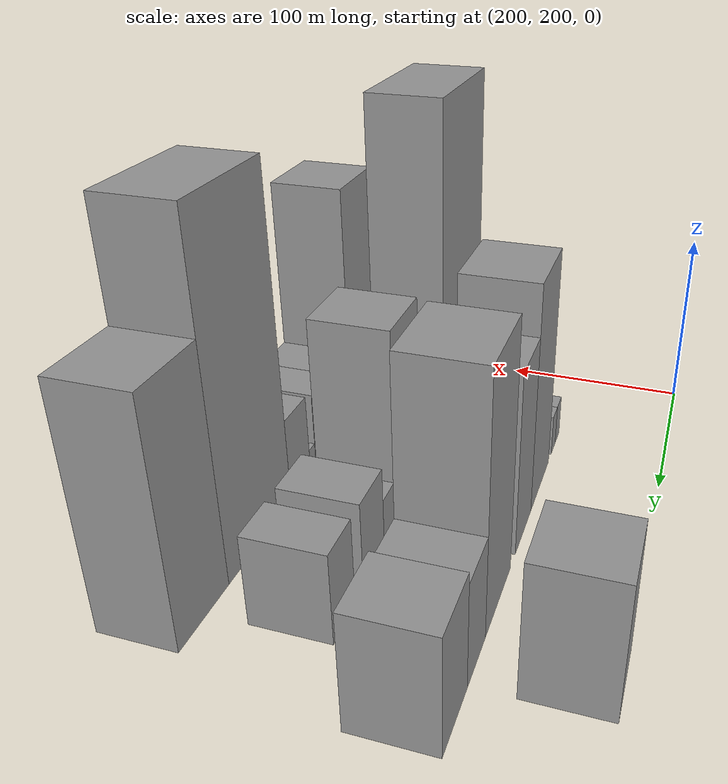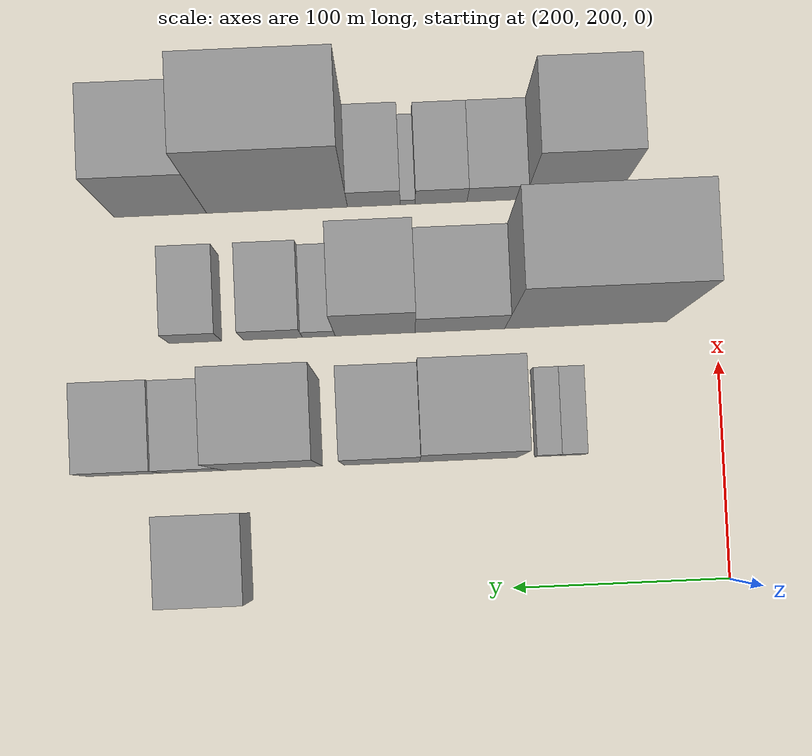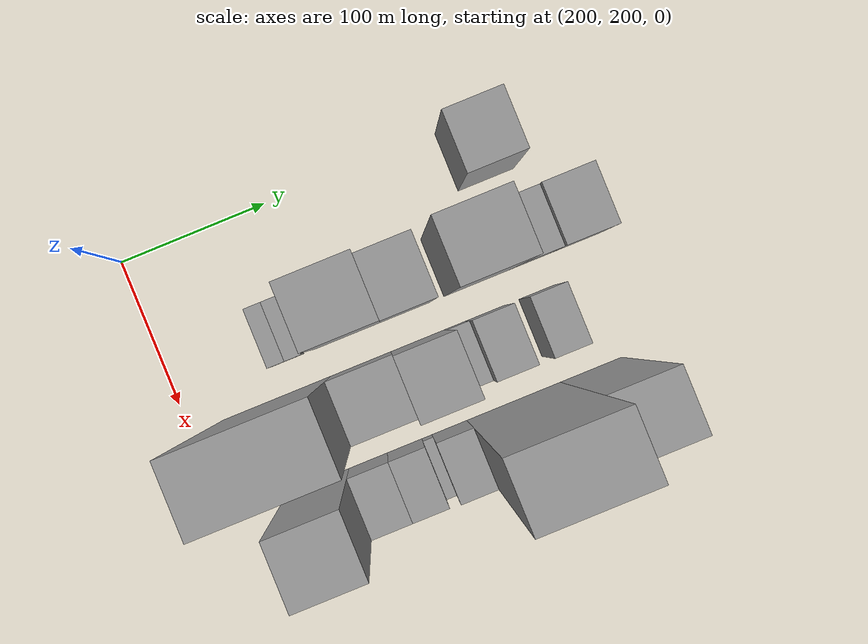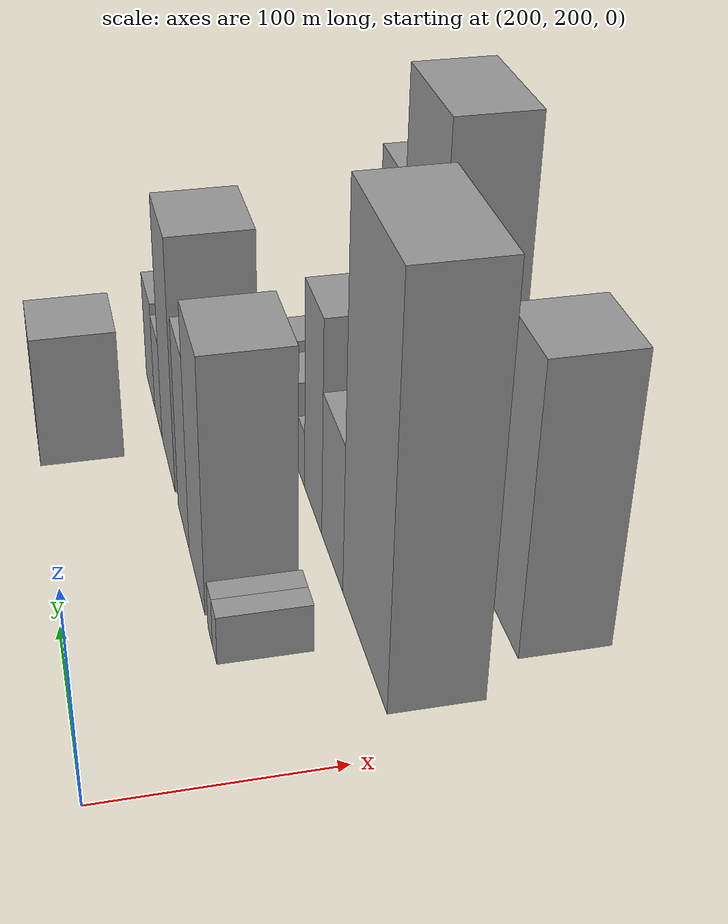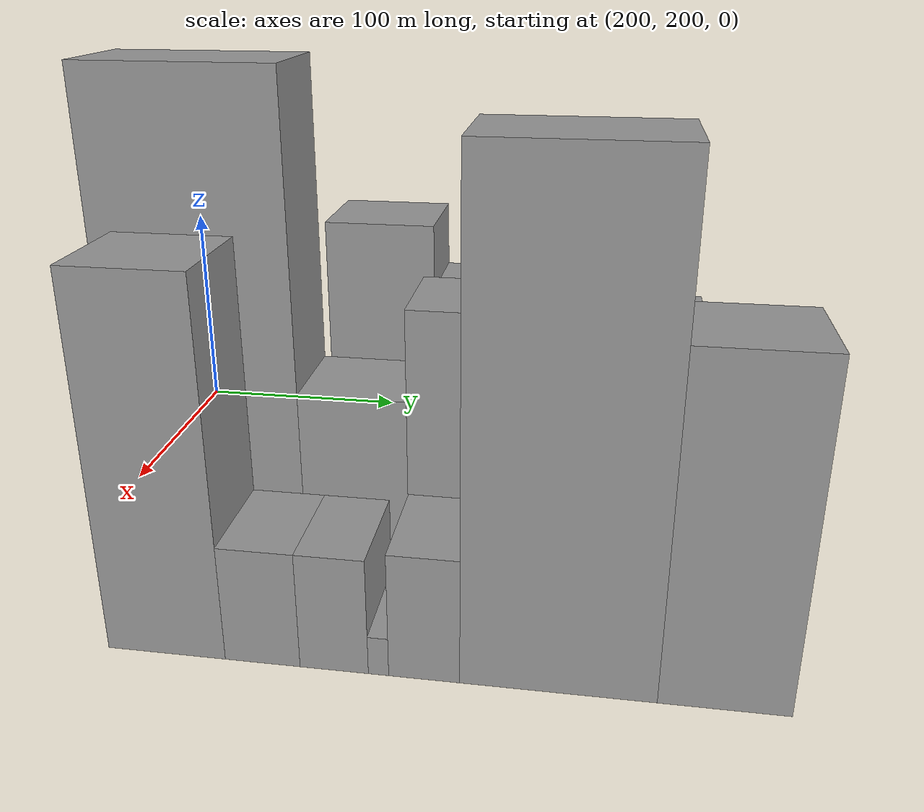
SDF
<sdf version="1.6">
 <world name="default">
  <model name="building_155">
   <static>1</static>
   <pose>220.0000 439.4248 0 0.000000 0.000000 0.000000</pose>
   <link name="link">
    <pose>0 0 34.50 0 0 0</pose>
    <collision name="collision"><geometry><box><size>40.0000 38.9174 69.0000</size></box></geometry></collision>
    <visual name="visual">
     <cast_shadows>0</cast_shadows>
     <geometry><box><size>40.0000 38.9174 69.0000</size></box></geometry>
     <material>
      <script>
       <uri>model://grey_wall/materials/scripts</uri>
       <uri>model://grey_wall/materials/textures</uri>
       <name>vrc/grey_wall</name>
      </script>
     </material>
    </visual>
   </link>
  </model>
  <model name="building_202">
   <static>1</static>
   <pose>280.0000 270.2227 0 0.000000 0.000000 0.000000</pose>
   <link name="link">
    <pose>0 0 12.00 0 0 0</pose>
    <collision name="collision"><geometry><box><size>40.0000 11.7076 24.0000</size></box></geometry></collision>
    <visual name="visual">
     <cast_shadows>0</cast_shadows>
     <geometry><box><size>40.0000 11.7076 24.0000</size></box></geometry>
     <material>
      <script>
       <uri>model://grey_wall/materials/scripts</uri>
       <uri>model://grey_wall/materials/textures</uri>
       <name>vrc/grey_wall</name>
      </script>
     </material>
    </visual>
   </link>
  </model>
  <model name="building_203">
   <static>1</static>
   <pose>280.0000 281.7889 0 0.000000 0.000000 0.000000</pose>
   <link name="link">
    <pose>0 0 12.00 0 0 0</pose>
    <collision name="collision"><geometry><box><size>40.0000 11.4247 24.0000</size></box></geometry></collision>
    <visual name="visual">
     <cast_shadows>0</cast_shadows>
     <geometry><box><size>40.0000 11.4247 24.0000</size></box></geometry>
     <material>
      <script>
       <uri>model://grey_wall/materials/scripts</uri>
       <uri>model://grey_wall/materials/textures</uri>
       <name>vrc/grey_wall</name>
      </script>
     </material>
    </visual>
   </link>
  </model>
  <model name="building_204">
   <static>1</static>
   <pose>280.0000 318.1011 0 0.000000 0.000000 0.000000</pose>
   <link name="link">
    <pose>0 0 63.00 0 0 0</pose>
    <collision name="collision"><geometry><box><size>40.0000 45.1996 126.0000</size></box></geometry></collision>
    <visual name="visual">
     <cast_shadows>0</cast_shadows>
     <geometry><box><size>40.0000 45.1996 126.0000</size></box></geometry>
     <material>
      <script>
       <uri>model://grey_wall/materials/scripts</uri>
       <uri>model://grey_wall/materials/textures</uri>
       <name>vrc/grey_wall</name>
      </script>
     </material>
    </visual>
   </link>
  </model>
  <model name="building_205">
   <static>1</static>
   <pose>280.0000 358.1148 0 0.000000 0.000000 0.000000</pose>
   <link name="link">
    <pose>0 0 49.50 0 0 0</pose>
    <collision name="collision"><geometry><box><size>40.0000 34.8279 99.0000</size></box></geometry></collision>
    <visual name="visual">
     <cast_shadows>0</cast_shadows>
     <geometry><box><size>40.0000 34.8279 99.0000</size></box></geometry>
     <material>
      <script>
       <uri>model://grey_wall/materials/scripts</uri>
       <uri>model://grey_wall/materials/textures</uri>
       <name>vrc/grey_wall</name>
      </script>
     </material>
    </visual>
   </link>
  </model>
  <model name="building_206">
   <static>1</static>
   <pose>280.0000 408.3843 0 0.000000 0.000000 0.000000</pose>
   <link name="link">
    <pose>0 0 66.00 0 0 0</pose>
    <collision name="collision"><geometry><box><size>40.0000 45.7112 132.0000</size></box></geometry></collision>
    <visual name="visual">
     <cast_shadows>0</cast_shadows>
     <geometry><box><size>40.0000 45.7112 132.0000</size></box></geometry>
     <material>
      <script>
       <uri>model://grey_wall/materials/scripts</uri>
       <uri>model://grey_wall/materials/textures</uri>
       <name>vrc/grey_wall</name>
      </script>
     </material>
    </visual>
   </link>
  </model>
  <model name="building_207">
   <static>1</static>
   <pose>280.0000 445.4644 0 0.000000 0.000000 0.000000</pose>
   <link name="link">
    <pose>0 0 27.00 0 0 0</pose>
    <collision name="collision"><geometry><box><size>40.0000 28.4489 54.0000</size></box></geometry></collision>
    <visual name="visual">
     <cast_shadows>0</cast_shadows>
     <geometry><box><size>40.0000 28.4489 54.0000</size></box></geometry>
     <material>
      <script>
       <uri>model://grey_wall/materials/scripts</uri>
       <uri>model://grey_wall/materials/textures</uri>
       <name>vrc/grey_wall</name>
      </script>
     </material>
    </visual>
   </link>
  </model>
  <model name="building_208">
   <static>1</static>
   <pose>280.0000 476.7838 0 0.000000 0.000000 0.000000</pose>
   <link name="link">
    <pose>0 0 30.00 0 0 0</pose>
    <collision name="collision"><geometry><box><size>40.0000 34.1899 60.0000</size></box></geometry></collision>
    <visual name="visual">
     <cast_shadows>0</cast_shadows>
     <geometry><box><size>40.0000 34.1899 60.0000</size></box></geometry>
     <material>
      <script>
       <uri>model://grey_wall/materials/scripts</uri>
       <uri>model://grey_wall/materials/textures</uri>
       <name>vrc/grey_wall</name>
      </script>
     </material>
    </visual>
   </link>
  </model>
  <model name="building_261">
   <static>1</static>
   <pose>340.0000 260.7293 0 0.000000 0.000000 0.000000</pose>
   <link name="link">
    <pose>0 0 97.50 0 0 0</pose>
    <collision name="collision"><geometry><box><size>40.0000 75.4783 195.0000</size></box></geometry></collision>
    <visual name="visual">
     <cast_shadows>0</cast_shadows>
     <geometry><box><size>40.0000 75.4783 195.0000</size></box></geometry>
     <material>
      <script>
       <uri>model://grey_wall/materials/scripts</uri>
       <uri>model://grey_wall/materials/textures</uri>
       <name>vrc/grey_wall</name>
      </script>
     </material>
    </visual>
   </link>
  </model>
  <model name="building_262">
   <static>1</static>
   <pose>340.0000 319.3008 0 0.000000 0.000000 0.000000</pose>
   <link name="link">
    <pose>0 0 37.50 0 0 0</pose>
    <collision name="collision"><geometry><box><size>40.0000 41.6646 75.0000</size></box></geometry></collision>
    <visual name="visual">
     <cast_shadows>0</cast_shadows>
     <geometry><box><size>40.0000 41.6646 75.0000</size></box></geometry>
     <material>
      <script>
       <uri>model://grey_wall/materials/scripts</uri>
       <uri>model://grey_wall/materials/textures</uri>
       <name>vrc/grey_wall</name>
      </script>
     </material>
    </visual>
   </link>
  </model>
  <model name="building_263">
   <static>1</static>
   <pose>340.0000 358.6591 0 0.000000 0.000000 0.000000</pose>
   <link name="link">
    <pose>0 0 55.50 0 0 0</pose>
    <collision name="collision"><geometry><box><size>40.0000 37.0520 111.0000</size></box></geometry></collision>
    <visual name="visual">
     <cast_shadows>0</cast_shadows>
     <geometry><box><size>40.0000 37.0520 111.0000</size></box></geometry>
     <material>
      <script>
       <uri>model://grey_wall/materials/scripts</uri>
       <uri>model://grey_wall/materials/textures</uri>
       <name>vrc/grey_wall</name>
      </script>
     </material>
    </visual>
   </link>
  </model>
  <model name="building_264">
   <static>1</static>
   <pose>340.0000 384.7673 0 0.000000 0.000000 0.000000</pose>
   <link name="link">
    <pose>0 0 15.00 0 0 0</pose>
    <collision name="collision"><geometry><box><size>40.0000 15.1644 30.0000</size></box></geometry></collision>
    <visual name="visual">
     <cast_shadows>0</cast_shadows>
     <geometry><box><size>40.0000 15.1644 30.0000</size></box></geometry>
     <material>
      <script>
       <uri>model://grey_wall/materials/scripts</uri>
       <uri>model://grey_wall/materials/textures</uri>
       <name>vrc/grey_wall</name>
      </script>
     </material>
    </visual>
   </link>
  </model>
  <model name="building_265">
   <static>1</static>
   <pose>340.0000 406.1052 0 0.000000 0.000000 0.000000</pose>
   <link name="link">
    <pose>0 0 24.00 0 0 0</pose>
    <collision name="collision"><geometry><box><size>40.0000 27.5115 48.0000</size></box></geometry></collision>
    <visual name="visual">
     <cast_shadows>0</cast_shadows>
     <geometry><box><size>40.0000 27.5115 48.0000</size></box></geometry>
     <material>
      <script>
       <uri>model://grey_wall/materials/scripts</uri>
       <uri>model://grey_wall/materials/textures</uri>
       <name>vrc/grey_wall</name>
      </script>
     </material>
    </visual>
   </link>
  </model>
  <model name="building_266">
   <static>1</static>
   <pose>340.0000 442.0676 0 0.000000 0.000000 0.000000</pose>
   <link name="link">
    <pose>0 0 24.00 0 0 0</pose>
    <collision name="collision"><geometry><box><size>40.0000 24.4134 48.0000</size></box></geometry></collision>
    <visual name="visual">
     <cast_shadows>0</cast_shadows>
     <geometry><box><size>40.0000 24.4134 48.0000</size></box></geometry>
     <material>
      <script>
       <uri>model://grey_wall/materials/scripts</uri>
       <uri>model://grey_wall/materials/textures</uri>
       <name>vrc/grey_wall</name>
      </script>
     </material>
    </visual>
   </link>
  </model>
  <model name="building_314">
   <static>1</static>
   <pose>400.0000 264.7132 0 0.000000 0.000000 0.000000</pose>
   <link name="link">
    <pose>0 0 70.50 0 0 0</pose>
    <collision name="collision"><geometry><box><size>40.0000 43.1669 141.0000</size></box></geometry></collision>
    <visual name="visual">
     <cast_shadows>0</cast_shadows>
     <geometry><box><size>40.0000 43.1669 141.0000</size></box></geometry>
     <material>
      <script>
       <uri>model://grey_wall/materials/scripts</uri>
       <uri>model://grey_wall/materials/textures</uri>
       <name>vrc/grey_wall</name>
      </script>
     </material>
    </visual>
   </link>
  </model>
  <model name="building_315">
   <static>1</static>
   <pose>400.0000 299.7742 0 0.000000 0.000000 0.000000</pose>
   <link name="link">
    <pose>0 0 22.50 0 0 0</pose>
    <collision name="collision"><geometry><box><size>40.0000 26.9551 45.0000</size></box></geometry></collision>
    <visual name="visual">
     <cast_shadows>0</cast_shadows>
     <geometry><box><size>40.0000 26.9551 45.0000</size></box></geometry>
     <material>
      <script>
       <uri>model://grey_wall/materials/scripts</uri>
       <uri>model://grey_wall/materials/textures</uri>
       <name>vrc/grey_wall</name>
      </script>
     </material>
    </visual>
   </link>
  </model>
  <model name="building_316">
   <static>1</static>
   <pose>400.0000 325.3165 0 0.000000 0.000000 0.000000</pose>
   <link name="link">
    <pose>0 0 22.50 0 0 0</pose>
    <collision name="collision"><geometry><box><size>40.0000 24.1296 45.0000</size></box></geometry></collision>
    <visual name="visual">
     <cast_shadows>0</cast_shadows>
     <geometry><box><size>40.0000 24.1296 45.0000</size></box></geometry>
     <material>
      <script>
       <uri>model://grey_wall/materials/scripts</uri>
       <uri>model://grey_wall/materials/textures</uri>
       <name>vrc/grey_wall</name>
      </script>
     </material>
    </visual>
   </link>
  </model>
  <model name="building_317">
   <static>1</static>
   <pose>400.0000 340.9232 0 0.000000 0.000000 0.000000</pose>
   <link name="link">
    <pose>0 0 7.50 0 0 0</pose>
    <collision name="collision"><geometry><box><size>40.0000 7.0838 15.0000</size></box></geometry></collision>
    <visual name="visual">
     <cast_shadows>0</cast_shadows>
     <geometry><box><size>40.0000 7.0838 15.0000</size></box></geometry>
     <material>
      <script>
       <uri>model://grey_wall/materials/scripts</uri>
       <uri>model://grey_wall/materials/textures</uri>
       <name>vrc/grey_wall</name>
      </script>
     </material>
    </visual>
   </link>
  </model>
  <model name="building_318">
   <static>1</static>
   <pose>400.0000 356.7091 0 0.000000 0.000000 0.000000</pose>
   <link name="link">
    <pose>0 0 24.00 0 0 0</pose>
    <collision name="collision"><geometry><box><size>40.0000 24.4880 48.0000</size></box></geometry></collision>
    <visual name="visual">
     <cast_shadows>0</cast_shadows>
     <geometry><box><size>40.0000 24.4880 48.0000</size></box></geometry>
     <material>
      <script>
       <uri>model://grey_wall/materials/scripts</uri>
       <uri>model://grey_wall/materials/textures</uri>
       <name>vrc/grey_wall</name>
      </script>
     </material>
    </visual>
   </link>
  </model>
  <model name="building_319">
   <static>1</static>
   <pose>400.0000 401.7825 0 0.000000 0.000000 0.000000</pose>
   <link name="link">
    <pose>0 0 91.50 0 0 0</pose>
    <collision name="collision"><geometry><box><size>40.0000 65.6587 183.0000</size></box></geometry></collision>
    <visual name="visual">
     <cast_shadows>0</cast_shadows>
     <geometry><box><size>40.0000 65.6587 183.0000</size></box></geometry>
     <material>
      <script>
       <uri>model://grey_wall/materials/scripts</uri>
       <uri>model://grey_wall/materials/textures</uri>
       <name>vrc/grey_wall</name>
      </script>
     </material>
    </visual>
   </link>
  </model>
  <model name="building_320">
   <static>1</static>
   <pose>400.0000 456.1350 0 0.000000 0.000000 0.000000</pose>
   <link name="link">
    <pose>0 0 63.00 0 0 0</pose>
    <collision name="collision"><geometry><box><size>40.0000 43.0465 126.0000</size></box></geometry></collision>
    <visual name="visual">
     <cast_shadows>0</cast_shadows>
     <geometry><box><size>40.0000 43.0465 126.0000</size></box></geometry>
     <material>
      <script>
       <uri>model://grey_wall/materials/scripts</uri>
       <uri>model://grey_wall/materials/textures</uri>
       <name>vrc/grey_wall</name>
      </script>
     </material>
    </visual>
   </link>
  </model>
 </world>
</sdf>
